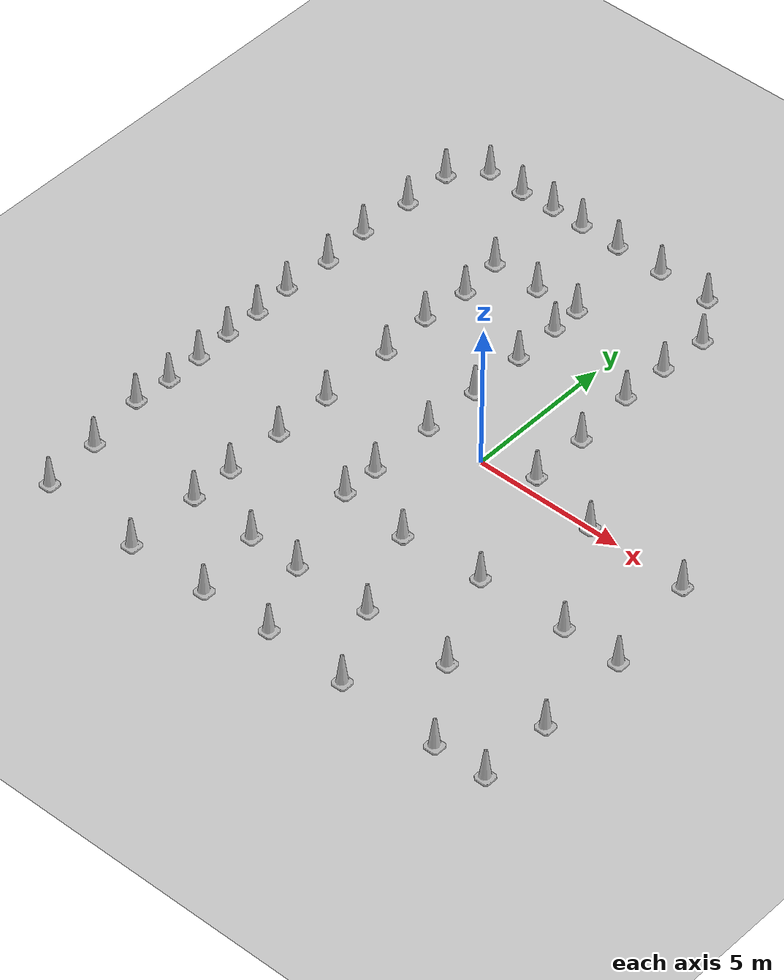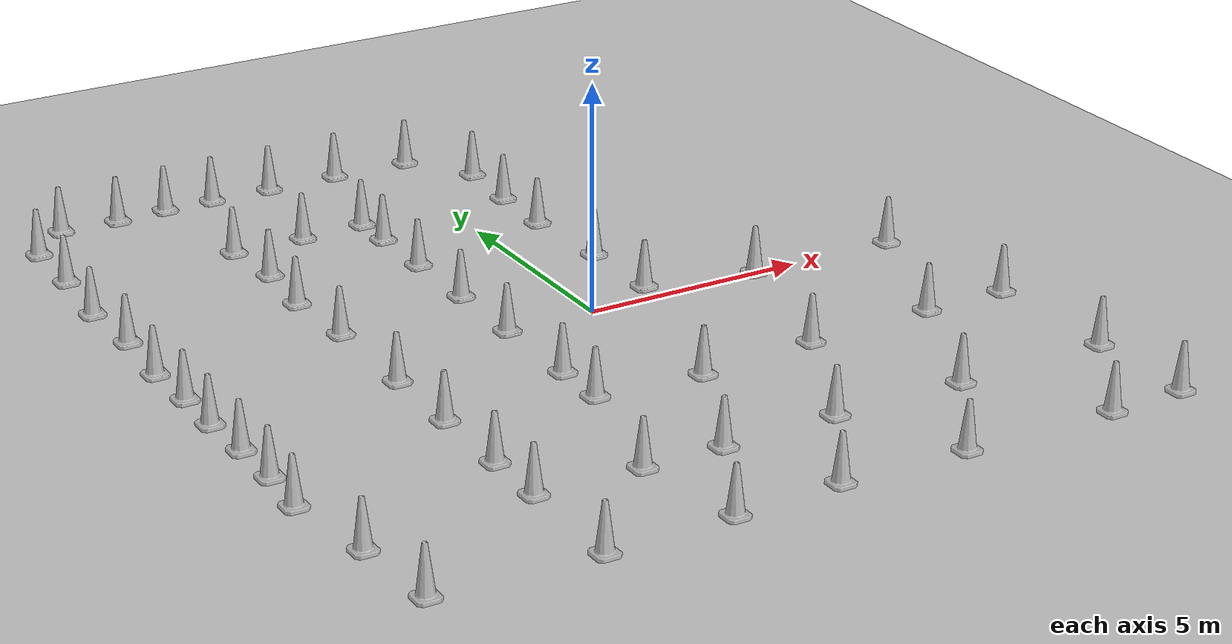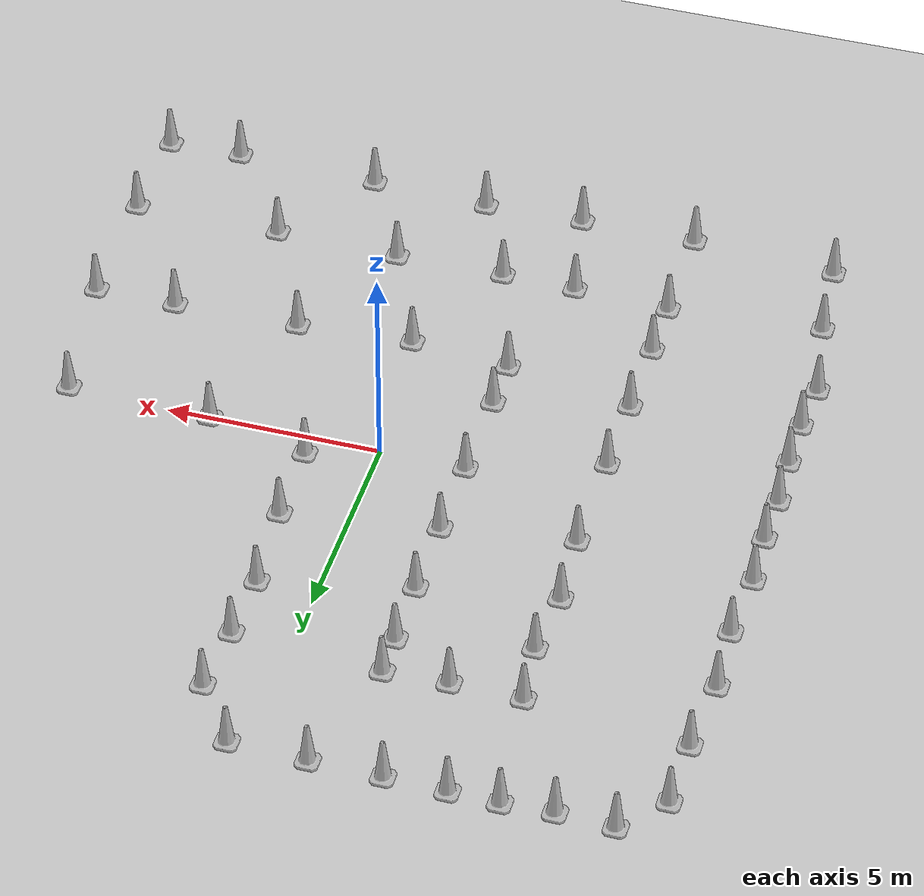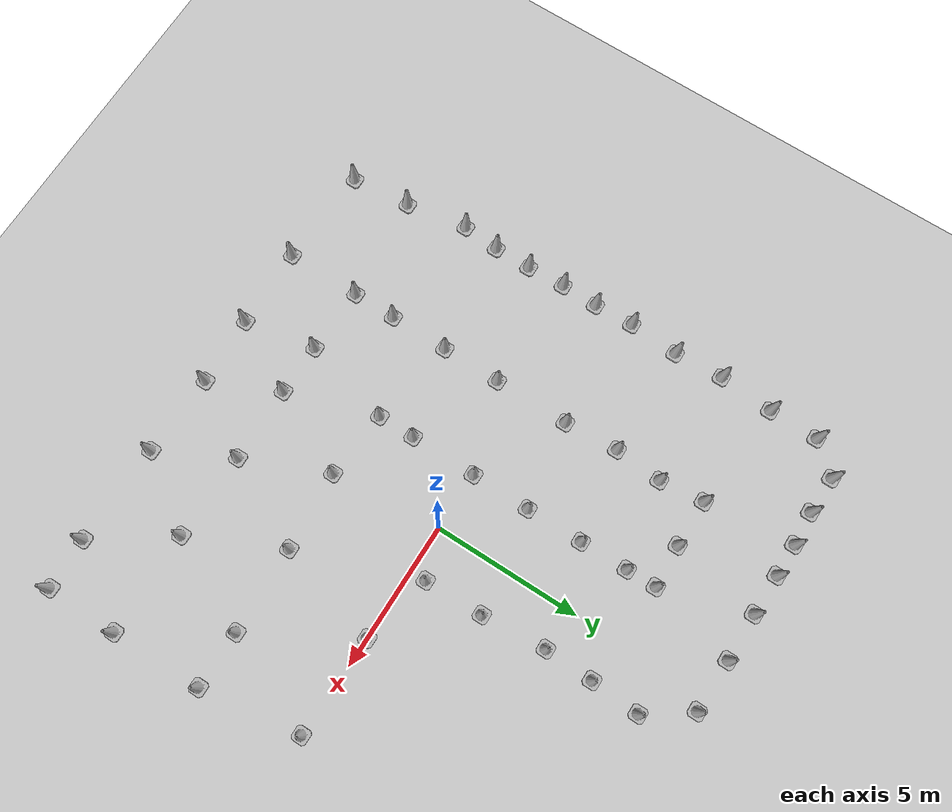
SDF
<sdf version="1.7">
 <world name="default">
  <light name="sun" type="directional">
   <pose>0 0 10 0 -0 0</pose>
   <diffuse>0.8 0.8 0.8 1</diffuse>
   <specular>0.2 0.2 0.2 1</specular>
   <attenuation>
    <range>1000</range>
    <constant>0.9</constant>
    <linear>0.01</linear>
    <quadratic>0.001</quadratic>
   </attenuation>
   <direction>-0.5 0.1 -0.9</direction>
   <spot><inner_angle>0</inner_angle><outer_angle>0</outer_angle><falloff>0</falloff></spot>
  </light>
  <model name="ground_plane">
   <static>1</static>
   <link name="link">
    <collision name="collision">
     <geometry><plane><normal>0 0 1</normal><size>100 100</size></plane></geometry>
     <surface>
      <contact><collide_bitmask>65535</collide_bitmask></contact>
      <friction><ode><mu>100</mu><mu2>50</mu2></ode></friction>
     </surface>
    </collision>
    <visual name="visual">
     <cast_shadows>0</cast_shadows>
     <geometry><plane><normal>0 0 1</normal><size>100 100</size></plane></geometry>
     <material>
      <script><uri>file://media/materials/scripts/gazebo.material</uri><name>Gazebo/Grey</name></script>
     </material>
    </visual>
   </link>
  </model>
  <gravity>0 0 -9.8</gravity>
  <magnetic_field>6e-06 2.3e-05 -4.2e-05</magnetic_field>
  <atmosphere type="adiabatic"/>
  <physics type="ode">
   <max_step_size>0.001</max_step_size>
   <real_time_factor>1</real_time_factor>
   <real_time_update_rate>1000</real_time_update_rate>
  </physics>
  <scene><ambient>0.4 0.4 0.4 1</ambient><background>0.7 0.7 0.7 1</background><shadows>1</shadows></scene>
  <audio><device>default</device></audio>
  <spherical_coordinates>
   <surface_model>EARTH_WGS84</surface_model>
   <latitude_deg>0</latitude_deg>
   <longitude_deg>0</longitude_deg>
   <elevation>0</elevation>
   <heading_deg>0</heading_deg>
  </spherical_coordinates>
  <model name="Construction Cone">
   <link name="link">
    <collision name="collision">
     <geometry>
      <mesh><scale>10 10 10</scale><uri>model://construction_cone/meshes/construction_cone.dae</uri></mesh>
     </geometry>
    </collision>
    <visual name="visual">
     <geometry>
      <mesh><scale>10 10 10</scale><uri>model://construction_cone/meshes/construction_cone.dae</uri></mesh>
     </geometry>
    </visual>
    <inertial>
     <inertia><ixx>1</ixx><ixy>0</ixy><ixz>0</ixz><iyy>1</iyy><iyz>0</iyz><izz>1</izz></inertia>
     <mass>1</mass>
    </inertial>
   </link>
   <pose>-8.58589 -6.78778 -6e-06 2e-06 -0 0</pose>
  </model>
  <model name="Construction Cone_0">
   <link name="link">
    <collision name="collision">
     <geometry>
      <mesh><scale>10 10 10</scale><uri>model://construction_cone/meshes/construction_cone.dae</uri></mesh>
     </geometry>
    </collision>
    <visual name="visual">
     <geometry>
      <mesh><scale>10 10 10</scale><uri>model://construction_cone/meshes/construction_cone.dae</uri></mesh>
     </geometry>
    </visual>
    <inertial>
     <inertia><ixx>1</ixx><ixy>0</ixy><ixz>0</ixz><iyy>1</iyy><iyz>0</iyz><izz>1</izz></inertia>
     <mass>1</mass>
    </inertial>
   </link>
   <pose>-8.39094 -8.78823 -0 0 -0 0</pose>
  </model>
  <model name="Construction Cone_1">
   <link name="link">
    <collision name="collision">
     <geometry>
      <mesh><scale>10 10 10</scale><uri>model://construction_cone/meshes/construction_cone.dae</uri></mesh>
     </geometry>
    </collision>
    <visual name="visual">
     <geometry>
      <mesh><scale>10 10 10</scale><uri>model://construction_cone/meshes/construction_cone.dae</uri></mesh>
     </geometry>
    </visual>
    <inertial>
     <inertia><ixx>1</ixx><ixy>0</ixy><ixz>0</ixz><iyy>1</iyy><iyz>0</iyz><izz>1</izz></inertia>
     <mass>1</mass>
    </inertial>
   </link>
   <pose>1.58108 0.538403 -1e-05 0 -0 0</pose>
  </model>
  <model name="Construction Cone_2">
   <link name="link">
    <collision name="collision">
     <geometry>
      <mesh><scale>10 10 10</scale><uri>model://construction_cone/meshes/construction_cone.dae</uri></mesh>
     </geometry>
    </collision>
    <visual name="visual">
     <geometry>
      <mesh><scale>10 10 10</scale><uri>model://construction_cone/meshes/construction_cone.dae</uri></mesh>
     </geometry>
    </visual>
    <inertial>
     <inertia><ixx>1</ixx><ixy>0</ixy><ixz>0</ixz><iyy>1</iyy><iyz>0</iyz><izz>1</izz></inertia>
     <mass>1</mass>
    </inertial>
   </link>
   <pose>1.53036 2.53831 -0 0 -0 0</pose>
  </model>
  <model name="Construction Cone_3">
   <link name="link">
    <collision name="collision">
     <geometry>
      <mesh><scale>10 10 10</scale><uri>model://construction_cone/meshes/construction_cone.dae</uri></mesh>
     </geometry>
    </collision>
    <visual name="visual">
     <geometry>
      <mesh><scale>10 10 10</scale><uri>model://construction_cone/meshes/construction_cone.dae</uri></mesh>
     </geometry>
    </visual>
    <inertial>
     <inertia><ixx>1</ixx><ixy>0</ixy><ixz>0</ixz><iyy>1</iyy><iyz>0</iyz><izz>1</izz></inertia>
     <mass>1</mass>
    </inertial>
   </link>
   <pose>1.34439 4.70949 -0 0 -0 0</pose>
  </model>
  <model name="Construction Cone_0_clone">
   <link name="link">
    <collision name="collision">
     <geometry>
      <mesh><scale>10 10 10</scale><uri>model://construction_cone/meshes/construction_cone.dae</uri></mesh>
     </geometry>
    </collision>
    <visual name="visual">
     <geometry>
      <mesh><scale>10 10 10</scale><uri>model://construction_cone/meshes/construction_cone.dae</uri></mesh>
     </geometry>
    </visual>
    <inertial>
     <inertia><ixx>1</ixx><ixy>0</ixy><ixz>0</ixz><iyy>1</iyy><iyz>0</iyz><izz>1</izz></inertia>
     <mass>1</mass>
    </inertial>
   </link>
   <pose>1.3829 6.35194 -1e-05 -0 -0 -0</pose>
  </model>
  <model name="Construction Cone_0_clone_0">
   <link name="link">
    <collision name="collision">
     <geometry>
      <mesh><scale>10 10 10</scale><uri>model://construction_cone/meshes/construction_cone.dae</uri></mesh>
     </geometry>
    </collision>
    <visual name="visual">
     <geometry>
      <mesh><scale>10 10 10</scale><uri>model://construction_cone/meshes/construction_cone.dae</uri></mesh>
     </geometry>
    </visual>
    <inertial>
     <inertia><ixx>1</ixx><ixy>0</ixy><ixz>0</ixz><iyy>1</iyy><iyz>0</iyz><izz>1</izz></inertia>
     <mass>1</mass>
    </inertial>
   </link>
   <pose>1.47291 8 -0 0 -0 0</pose>
  </model>
  <model name="Construction Cone_0_clone_1">
   <link name="link">
    <collision name="collision">
     <geometry>
      <mesh><scale>10 10 10</scale><uri>model://construction_cone/meshes/construction_cone.dae</uri></mesh>
     </geometry>
    </collision>
    <visual name="visual">
     <geometry>
      <mesh><scale>10 10 10</scale><uri>model://construction_cone/meshes/construction_cone.dae</uri></mesh>
     </geometry>
    </visual>
    <inertial>
     <inertia><ixx>1</ixx><ixy>0</ixy><ixz>0</ixz><iyy>1</iyy><iyz>0</iyz><izz>1</izz></inertia>
     <mass>1</mass>
    </inertial>
   </link>
   <pose>0.457732 9.44511 -0 0 -0 0</pose>
  </model>
  <model name="Construction Cone_0_clone_2">
   <link name="link">
    <collision name="collision">
     <geometry>
      <mesh><scale>10 10 10</scale><uri>model://construction_cone/meshes/construction_cone.dae</uri></mesh>
     </geometry>
    </collision>
    <visual name="visual">
     <geometry>
      <mesh><scale>10 10 10</scale><uri>model://construction_cone/meshes/construction_cone.dae</uri></mesh>
     </geometry>
    </visual>
    <inertial>
     <inertia><ixx>1</ixx><ixy>0</ixy><ixz>0</ixz><iyy>1</iyy><iyz>0</iyz><izz>1</izz></inertia>
     <mass>1</mass>
    </inertial>
   </link>
   <pose>-1.33343 9.49144 -5e-06 -4e-06 1e-06 0</pose>
  </model>
  <model name="Construction Cone_0_clone_3">
   <link name="link">
    <collision name="collision">
     <geometry>
      <mesh><scale>10 10 10</scale><uri>model://construction_cone/meshes/construction_cone.dae</uri></mesh>
     </geometry>
    </collision>
    <visual name="visual">
     <geometry>
      <mesh><scale>10 10 10</scale><uri>model://construction_cone/meshes/construction_cone.dae</uri></mesh>
     </geometry>
    </visual>
    <inertial>
     <inertia><ixx>1</ixx><ixy>0</ixy><ixz>0</ixz><iyy>1</iyy><iyz>0</iyz><izz>1</izz></inertia>
     <mass>1</mass>
    </inertial>
   </link>
   <pose>-2.97493 9.4937 -1e-05 -0 -0 -0</pose>
  </model>
  <model name="Construction Cone_0_clone_4">
   <link name="link">
    <collision name="collision">
     <geometry>
      <mesh><scale>10 10 10</scale><uri>model://construction_cone/meshes/construction_cone.dae</uri></mesh>
     </geometry>
    </collision>
    <visual name="visual">
     <geometry>
      <mesh><scale>10 10 10</scale><uri>model://construction_cone/meshes/construction_cone.dae</uri></mesh>
     </geometry>
    </visual>
    <inertial>
     <inertia><ixx>1</ixx><ixy>0</ixy><ixz>0</ixz><iyy>1</iyy><iyz>0</iyz><izz>1</izz></inertia>
     <mass>1</mass>
    </inertial>
   </link>
   <pose>-4.37572 9.51538 -0 0 -0 0</pose>
  </model>
  <model name="Construction Cone_0_clone_5">
   <link name="link">
    <collision name="collision">
     <geometry>
      <mesh><scale>10 10 10</scale><uri>model://construction_cone/meshes/construction_cone.dae</uri></mesh>
     </geometry>
    </collision>
    <visual name="visual">
     <geometry>
      <mesh><scale>10 10 10</scale><uri>model://construction_cone/meshes/construction_cone.dae</uri></mesh>
     </geometry>
    </visual>
    <inertial>
     <inertia><ixx>1</ixx><ixy>0</ixy><ixz>0</ixz><iyy>1</iyy><iyz>0</iyz><izz>1</izz></inertia>
     <mass>1</mass>
    </inertial>
   </link>
   <pose>-5.50758 9.52013 -0 0 -0 0</pose>
  </model>
  <model name="Construction Cone_0_clone_6">
   <link name="link">
    <collision name="collision">
     <geometry>
      <mesh><scale>10 10 10</scale><uri>model://construction_cone/meshes/construction_cone.dae</uri></mesh>
     </geometry>
    </collision>
    <visual name="visual">
     <geometry>
      <mesh><scale>10 10 10</scale><uri>model://construction_cone/meshes/construction_cone.dae</uri></mesh>
     </geometry>
    </visual>
    <inertial>
     <inertia><ixx>1</ixx><ixy>0</ixy><ixz>0</ixz><iyy>1</iyy><iyz>0</iyz><izz>1</izz></inertia>
     <mass>1</mass>
    </inertial>
   </link>
   <pose>-6.6683 9.4597 -4e-06 4e-06 -1e-06 0</pose>
  </model>
  <model name="Construction Cone_0_clone_7">
   <link name="link">
    <collision name="collision">
     <geometry>
      <mesh><scale>10 10 10</scale><uri>model://construction_cone/meshes/construction_cone.dae</uri></mesh>
     </geometry>
    </collision>
    <visual name="visual">
     <geometry>
      <mesh><scale>10 10 10</scale><uri>model://construction_cone/meshes/construction_cone.dae</uri></mesh>
     </geometry>
    </visual>
    <inertial>
     <inertia><ixx>1</ixx><ixy>0</ixy><ixz>0</ixz><iyy>1</iyy><iyz>0</iyz><izz>1</izz></inertia>
     <mass>1</mass>
    </inertial>
   </link>
   <pose>-7.9764 9.50957 -0 0 -0 0</pose>
  </model>
  <model name="Construction Cone_0_clone_8">
   <link name="link">
    <collision name="collision">
     <geometry>
      <mesh><scale>10 10 10</scale><uri>model://construction_cone/meshes/construction_cone.dae</uri></mesh>
     </geometry>
    </collision>
    <visual name="visual">
     <geometry>
      <mesh><scale>10 10 10</scale><uri>model://construction_cone/meshes/construction_cone.dae</uri></mesh>
     </geometry>
    </visual>
    <inertial>
     <inertia><ixx>1</ixx><ixy>0</ixy><ixz>0</ixz><iyy>1</iyy><iyz>0</iyz><izz>1</izz></inertia>
     <mass>1</mass>
    </inertial>
   </link>
   <pose>-8.85784 8.51296 -0 0 -0 0</pose>
  </model>
  <model name="Construction Cone_0_clone_9">
   <link name="link">
    <collision name="collision">
     <geometry>
      <mesh><scale>10 10 10</scale><uri>model://construction_cone/meshes/construction_cone.dae</uri></mesh>
     </geometry>
    </collision>
    <visual name="visual">
     <geometry>
      <mesh><scale>10 10 10</scale><uri>model://construction_cone/meshes/construction_cone.dae</uri></mesh>
     </geometry>
    </visual>
    <inertial>
     <inertia><ixx>1</ixx><ixy>0</ixy><ixz>0</ixz><iyy>1</iyy><iyz>0</iyz><izz>1</izz></inertia>
     <mass>1</mass>
    </inertial>
   </link>
   <pose>-8.87069 6.83471 -0 0 -1e-06 0</pose>
  </model>
  <model name="Construction Cone_0_clone_10">
   <link name="link">
    <collision name="collision">
     <geometry>
      <mesh><scale>10 10 10</scale><uri>model://construction_cone/meshes/construction_cone.dae</uri></mesh>
     </geometry>
    </collision>
    <visual name="visual">
     <geometry>
      <mesh><scale>10 10 10</scale><uri>model://construction_cone/meshes/construction_cone.dae</uri></mesh>
     </geometry>
    </visual>
    <inertial>
     <inertia><ixx>1</ixx><ixy>0</ixy><ixz>0</ixz><iyy>1</iyy><iyz>0</iyz><izz>1</izz></inertia>
     <mass>1</mass>
    </inertial>
   </link>
   <pose>-9 5 -0 -0 -0 -0</pose>
  </model>
  <model name="Construction Cone_0_clone_11">
   <link name="link">
    <collision name="collision">
     <geometry>
      <mesh><scale>10 10 10</scale><uri>model://construction_cone/meshes/construction_cone.dae</uri></mesh>
     </geometry>
    </collision>
    <visual name="visual">
     <geometry>
      <mesh><scale>10 10 10</scale><uri>model://construction_cone/meshes/construction_cone.dae</uri></mesh>
     </geometry>
    </visual>
    <inertial>
     <inertia><ixx>1</ixx><ixy>0</ixy><ixz>0</ixz><iyy>1</iyy><iyz>0</iyz><izz>1</izz></inertia>
     <mass>1</mass>
    </inertial>
   </link>
   <pose>-8.89383 3.34438 -8e-06 1e-06 -0 0</pose>
  </model>
  <model name="Construction Cone_0_clone_12">
   <link name="link">
    <collision name="collision">
     <geometry>
      <mesh><scale>10 10 10</scale><uri>model://construction_cone/meshes/construction_cone.dae</uri></mesh>
     </geometry>
    </collision>
    <visual name="visual">
     <geometry>
      <mesh><scale>10 10 10</scale><uri>model://construction_cone/meshes/construction_cone.dae</uri></mesh>
     </geometry>
    </visual>
    <inertial>
     <inertia><ixx>1</ixx><ixy>0</ixy><ixz>0</ixz><iyy>1</iyy><iyz>0</iyz><izz>1</izz></inertia>
     <mass>1</mass>
    </inertial>
   </link>
   <pose>-8.98898 1.6641 -1e-05 -0 -0 -0</pose>
  </model>
  <model name="Construction Cone_0_clone_13">
   <link name="link">
    <collision name="collision">
     <geometry>
      <mesh><scale>10 10 10</scale><uri>model://construction_cone/meshes/construction_cone.dae</uri></mesh>
     </geometry>
    </collision>
    <visual name="visual">
     <geometry>
      <mesh><scale>10 10 10</scale><uri>model://construction_cone/meshes/construction_cone.dae</uri></mesh>
     </geometry>
    </visual>
    <inertial>
     <inertia><ixx>1</ixx><ixy>0</ixy><ixz>0</ixz><iyy>1</iyy><iyz>0</iyz><izz>1</izz></inertia>
     <mass>1</mass>
    </inertial>
   </link>
   <pose>-8.9188 0.333059 -1e-05 -1e-06 0 0</pose>
  </model>
  <model name="Construction Cone_0_clone_14">
   <link name="link">
    <collision name="collision">
     <geometry>
      <mesh><scale>10 10 10</scale><uri>model://construction_cone/meshes/construction_cone.dae</uri></mesh>
     </geometry>
    </collision>
    <visual name="visual">
     <geometry>
      <mesh><scale>10 10 10</scale><uri>model://construction_cone/meshes/construction_cone.dae</uri></mesh>
     </geometry>
    </visual>
    <inertial>
     <inertia><ixx>1</ixx><ixy>0</ixy><ixz>0</ixz><iyy>1</iyy><iyz>0</iyz><izz>1</izz></inertia>
     <mass>1</mass>
    </inertial>
   </link>
   <pose>-8.93304 -0.911355 -0 0 -1e-06 0</pose>
  </model>
  <model name="Construction Cone_0_clone_15">
   <link name="link">
    <collision name="collision">
     <geometry>
      <mesh><scale>10 10 10</scale><uri>model://construction_cone/meshes/construction_cone.dae</uri></mesh>
     </geometry>
    </collision>
    <visual name="visual">
     <geometry>
      <mesh><scale>10 10 10</scale><uri>model://construction_cone/meshes/construction_cone.dae</uri></mesh>
     </geometry>
    </visual>
    <inertial>
     <inertia><ixx>1</ixx><ixy>0</ixy><ixz>0</ixz><iyy>1</iyy><iyz>0</iyz><izz>1</izz></inertia>
     <mass>1</mass>
    </inertial>
   </link>
   <pose>-8.865 -2.19582 -0 0 -0 0</pose>
  </model>
  <model name="Construction Cone_0_clone_16">
   <link name="link">
    <collision name="collision">
     <geometry>
      <mesh><scale>10 10 10</scale><uri>model://construction_cone/meshes/construction_cone.dae</uri></mesh>
     </geometry>
    </collision>
    <visual name="visual">
     <geometry>
      <mesh><scale>10 10 10</scale><uri>model://construction_cone/meshes/construction_cone.dae</uri></mesh>
     </geometry>
    </visual>
    <inertial>
     <inertia><ixx>1</ixx><ixy>0</ixy><ixz>0</ixz><iyy>1</iyy><iyz>0</iyz><izz>1</izz></inertia>
     <mass>1</mass>
    </inertial>
   </link>
   <pose>-8.85179 -3.45389 -0 2e-06 -2e-06 -0</pose>
  </model>
  <model name="Construction Cone_0_clone_17">
   <link name="link">
    <collision name="collision">
     <geometry>
      <mesh><scale>10 10 10</scale><uri>model://construction_cone/meshes/construction_cone.dae</uri></mesh>
     </geometry>
    </collision>
    <visual name="visual">
     <geometry>
      <mesh><scale>10 10 10</scale><uri>model://construction_cone/meshes/construction_cone.dae</uri></mesh>
     </geometry>
    </visual>
    <inertial>
     <inertia><ixx>1</ixx><ixy>0</ixy><ixz>0</ixz><iyy>1</iyy><iyz>0</iyz><izz>1</izz></inertia>
     <mass>1</mass>
    </inertial>
   </link>
   <pose>-8.94632 -4.71068 -1e-05 0 -0 0</pose>
  </model>
  <model name="Construction Cone_0_clone_18">
   <link name="link">
    <collision name="collision">
     <geometry>
      <mesh><scale>10 10 10</scale><uri>model://construction_cone/meshes/construction_cone.dae</uri></mesh>
     </geometry>
    </collision>
    <visual name="visual">
     <geometry>
      <mesh><scale>10 10 10</scale><uri>model://construction_cone/meshes/construction_cone.dae</uri></mesh>
     </geometry>
    </visual>
    <inertial>
     <inertia><ixx>1</ixx><ixy>0</ixy><ixz>0</ixz><iyy>1</iyy><iyz>0</iyz><izz>1</izz></inertia>
     <mass>1</mass>
    </inertial>
   </link>
   <pose>-2 0 -0 0 -0 0</pose>
  </model>
  <model name="Construction Cone_0_clone_19">
   <link name="link">
    <collision name="collision">
     <geometry>
      <mesh><scale>10 10 10</scale><uri>model://construction_cone/meshes/construction_cone.dae</uri></mesh>
     </geometry>
    </collision>
    <visual name="visual">
     <geometry>
      <mesh><scale>10 10 10</scale><uri>model://construction_cone/meshes/construction_cone.dae</uri></mesh>
     </geometry>
    </visual>
    <inertial>
     <inertia><ixx>1</ixx><ixy>0</ixy><ixz>0</ixz><iyy>1</iyy><iyz>0</iyz><izz>1</izz></inertia>
     <mass>1</mass>
    </inertial>
   </link>
   <pose>-2 2 -1e-05 -1e-06 0 0</pose>
  </model>
  <model name="Construction Cone_0_clone_20">
   <link name="link">
    <collision name="collision">
     <geometry>
      <mesh><scale>10 10 10</scale><uri>model://construction_cone/meshes/construction_cone.dae</uri></mesh>
     </geometry>
    </collision>
    <visual name="visual">
     <geometry>
      <mesh><scale>10 10 10</scale><uri>model://construction_cone/meshes/construction_cone.dae</uri></mesh>
     </geometry>
    </visual>
    <inertial>
     <inertia><ixx>1</ixx><ixy>0</ixy><ixz>0</ixz><iyy>1</iyy><iyz>0</iyz><izz>1</izz></inertia>
     <mass>1</mass>
    </inertial>
   </link>
   <pose>-2.0151 3.92446 -0 0 -1e-06 0</pose>
  </model>
  <model name="Construction Cone_0_clone_21">
   <link name="link">
    <collision name="collision">
     <geometry>
      <mesh><scale>10 10 10</scale><uri>model://construction_cone/meshes/construction_cone.dae</uri></mesh>
     </geometry>
    </collision>
    <visual name="visual">
     <geometry>
      <mesh><scale>10 10 10</scale><uri>model://construction_cone/meshes/construction_cone.dae</uri></mesh>
     </geometry>
    </visual>
    <inertial>
     <inertia><ixx>1</ixx><ixy>0</ixy><ixz>0</ixz><iyy>1</iyy><iyz>0</iyz><izz>1</izz></inertia>
     <mass>1</mass>
    </inertial>
   </link>
   <pose>-2.04298 5.55068 0 -0 -0 -0</pose>
  </model>
  <model name="Construction Cone_0_clone_22">
   <link name="link">
    <collision name="collision">
     <geometry>
      <mesh><scale>10 10 10</scale><uri>model://construction_cone/meshes/construction_cone.dae</uri></mesh>
     </geometry>
    </collision>
    <visual name="visual">
     <geometry>
      <mesh><scale>10 10 10</scale><uri>model://construction_cone/meshes/construction_cone.dae</uri></mesh>
     </geometry>
    </visual>
    <inertial>
     <inertia><ixx>1</ixx><ixy>0</ixy><ixz>0</ixz><iyy>1</iyy><iyz>0</iyz><izz>1</izz></inertia>
     <mass>1</mass>
    </inertial>
   </link>
   <pose>-2.06474 6.56807 -0 0 -0 0</pose>
  </model>
  <model name="Construction Cone_0_clone_23">
   <link name="link">
    <collision name="collision">
     <geometry>
      <mesh><scale>10 10 10</scale><uri>model://construction_cone/meshes/construction_cone.dae</uri></mesh>
     </geometry>
    </collision>
    <visual name="visual">
     <geometry>
      <mesh><scale>10 10 10</scale><uri>model://construction_cone/meshes/construction_cone.dae</uri></mesh>
     </geometry>
    </visual>
    <inertial>
     <inertia><ixx>1</ixx><ixy>0</ixy><ixz>0</ixz><iyy>1</iyy><iyz>0</iyz><izz>1</izz></inertia>
     <mass>1</mass>
    </inertial>
   </link>
   <pose>-3.52967 6.50012 -0 0 -1e-06 0</pose>
  </model>
  <model name="Construction Cone_0_clone_24">
   <link name="link">
    <collision name="collision">
     <geometry>
      <mesh><scale>10 10 10</scale><uri>model://construction_cone/meshes/construction_cone.dae</uri></mesh>
     </geometry>
    </collision>
    <visual name="visual">
     <geometry>
      <mesh><scale>10 10 10</scale><uri>model://construction_cone/meshes/construction_cone.dae</uri></mesh>
     </geometry>
    </visual>
    <inertial>
     <inertia><ixx>1</ixx><ixy>0</ixy><ixz>0</ixz><iyy>1</iyy><iyz>0</iyz><izz>1</izz></inertia>
     <mass>1</mass>
    </inertial>
   </link>
   <pose>-5.16534 6.50658 -0 0 -1e-06 0</pose>
  </model>
  <model name="Construction Cone_0_clone_25">
   <link name="link">
    <collision name="collision">
     <geometry>
      <mesh><scale>10 10 10</scale><uri>model://construction_cone/meshes/construction_cone.dae</uri></mesh>
     </geometry>
    </collision>
    <visual name="visual">
     <geometry>
      <mesh><scale>10 10 10</scale><uri>model://construction_cone/meshes/construction_cone.dae</uri></mesh>
     </geometry>
    </visual>
    <inertial>
     <inertia><ixx>1</ixx><ixy>0</ixy><ixz>0</ixz><iyy>1</iyy><iyz>0</iyz><izz>1</izz></inertia>
     <mass>1</mass>
    </inertial>
   </link>
   <pose>-5 5 -1e-05 0 -0 0</pose>
  </model>
  <model name="Construction Cone_0_clone_26">
   <link name="link">
    <collision name="collision">
     <geometry>
      <mesh><scale>10 10 10</scale><uri>model://construction_cone/meshes/construction_cone.dae</uri></mesh>
     </geometry>
    </collision>
    <visual name="visual">
     <geometry>
      <mesh><scale>10 10 10</scale><uri>model://construction_cone/meshes/construction_cone.dae</uri></mesh>
     </geometry>
    </visual>
    <inertial>
     <inertia><ixx>1</ixx><ixy>0</ixy><ixz>0</ixz><iyy>1</iyy><iyz>0</iyz><izz>1</izz></inertia>
     <mass>1</mass>
    </inertial>
   </link>
   <pose>-5.12641 3.38239 -1e-05 0 -0 0</pose>
  </model>
  <model name="Construction Cone_0_clone_27">
   <link name="link">
    <collision name="collision">
     <geometry>
      <mesh><scale>10 10 10</scale><uri>model://construction_cone/meshes/construction_cone.dae</uri></mesh>
     </geometry>
    </collision>
    <visual name="visual">
     <geometry>
      <mesh><scale>10 10 10</scale><uri>model://construction_cone/meshes/construction_cone.dae</uri></mesh>
     </geometry>
    </visual>
    <inertial>
     <inertia><ixx>1</ixx><ixy>0</ixy><ixz>0</ixz><iyy>1</iyy><iyz>0</iyz><izz>1</izz></inertia>
     <mass>1</mass>
    </inertial>
   </link>
   <pose>-5 1.55353 -0 0 -0 0</pose>
  </model>
  <model name="Construction Cone_0_clone_28">
   <link name="link">
    <collision name="collision">
     <geometry>
      <mesh><scale>10 10 10</scale><uri>model://construction_cone/meshes/construction_cone.dae</uri></mesh>
     </geometry>
    </collision>
    <visual name="visual">
     <geometry>
      <mesh><scale>10 10 10</scale><uri>model://construction_cone/meshes/construction_cone.dae</uri></mesh>
     </geometry>
    </visual>
    <inertial>
     <inertia><ixx>1</ixx><ixy>0</ixy><ixz>0</ixz><iyy>1</iyy><iyz>0</iyz><izz>1</izz></inertia>
     <mass>1</mass>
    </inertial>
   </link>
   <pose>-5 -1 -0 0 -1e-06 0</pose>
  </model>
  <model name="Construction Cone_0_clone_29">
   <link name="link">
    <collision name="collision">
     <geometry>
      <mesh><scale>10 10 10</scale><uri>model://construction_cone/meshes/construction_cone.dae</uri></mesh>
     </geometry>
    </collision>
    <visual name="visual">
     <geometry>
      <mesh><scale>10 10 10</scale><uri>model://construction_cone/meshes/construction_cone.dae</uri></mesh>
     </geometry>
    </visual>
    <inertial>
     <inertia><ixx>1</ixx><ixy>0</ixy><ixz>0</ixz><iyy>1</iyy><iyz>0</iyz><izz>1</izz></inertia>
     <mass>1</mass>
    </inertial>
   </link>
   <pose>-5 -3 -4e-06 4e-06 -1e-06 0</pose>
  </model>
  <model name="Construction Cone_0_clone_30">
   <link name="link">
    <collision name="collision">
     <geometry>
      <mesh><scale>10 10 10</scale><uri>model://construction_cone/meshes/construction_cone.dae</uri></mesh>
     </geometry>
    </collision>
    <visual name="visual">
     <geometry>
      <mesh><scale>10 10 10</scale><uri>model://construction_cone/meshes/construction_cone.dae</uri></mesh>
     </geometry>
    </visual>
    <inertial>
     <inertia><ixx>1</ixx><ixy>0</ixy><ixz>0</ixz><iyy>1</iyy><iyz>0</iyz><izz>1</izz></inertia>
     <mass>1</mass>
    </inertial>
   </link>
   <pose>-5 -5 -9e-06 -1e-06 -0 -0</pose>
  </model>
  <model name="Construction Cone_0_clone_31">
   <link name="link">
    <collision name="collision">
     <geometry>
      <mesh><scale>10 10 10</scale><uri>model://construction_cone/meshes/construction_cone.dae</uri></mesh>
     </geometry>
    </collision>
    <visual name="visual">
     <geometry>
      <mesh><scale>10 10 10</scale><uri>model://construction_cone/meshes/construction_cone.dae</uri></mesh>
     </geometry>
    </visual>
    <inertial>
     <inertia><ixx>1</ixx><ixy>0</ixy><ixz>0</ixz><iyy>1</iyy><iyz>0</iyz><izz>1</izz></inertia>
     <mass>1</mass>
    </inertial>
   </link>
   <pose>-5 -6.47337 -6e-06 -4e-06 1e-06 0</pose>
  </model>
  <model name="Construction Cone_0_clone_32">
   <link name="link">
    <collision name="collision">
     <geometry>
      <mesh><scale>10 10 10</scale><uri>model://construction_cone/meshes/construction_cone.dae</uri></mesh>
     </geometry>
    </collision>
    <visual name="visual">
     <geometry>
      <mesh><scale>10 10 10</scale><uri>model://construction_cone/meshes/construction_cone.dae</uri></mesh>
     </geometry>
    </visual>
    <inertial>
     <inertia><ixx>1</ixx><ixy>0</ixy><ixz>0</ixz><iyy>1</iyy><iyz>0</iyz><izz>1</izz></inertia>
     <mass>1</mass>
    </inertial>
   </link>
   <pose>-2.7462 -6.55253 -0 0 -0 0</pose>
  </model>
  <model name="Construction Cone_0_clone_33">
   <link name="link">
    <collision name="collision">
     <geometry>
      <mesh><scale>10 10 10</scale><uri>model://construction_cone/meshes/construction_cone.dae</uri></mesh>
     </geometry>
    </collision>
    <visual name="visual">
     <geometry>
      <mesh><scale>10 10 10</scale><uri>model://construction_cone/meshes/construction_cone.dae</uri></mesh>
     </geometry>
    </visual>
    <inertial>
     <inertia><ixx>1</ixx><ixy>0</ixy><ixz>0</ixz><iyy>1</iyy><iyz>0</iyz><izz>1</izz></inertia>
     <mass>1</mass>
    </inertial>
   </link>
   <pose>-1 -6.57463 -0 0 -0 0</pose>
  </model>
  <model name="Construction Cone_0_clone_34">
   <link name="link">
    <collision name="collision">
     <geometry>
      <mesh><scale>10 10 10</scale><uri>model://construction_cone/meshes/construction_cone.dae</uri></mesh>
     </geometry>
    </collision>
    <visual name="visual">
     <geometry>
      <mesh><scale>10 10 10</scale><uri>model://construction_cone/meshes/construction_cone.dae</uri></mesh>
     </geometry>
    </visual>
    <inertial>
     <inertia><ixx>1</ixx><ixy>0</ixy><ixz>0</ixz><iyy>1</iyy><iyz>0</iyz><izz>1</izz></inertia>
     <mass>1</mass>
    </inertial>
   </link>
   <pose>1.56437 -6.52913 -1e-06 1e-06 -2e-06 -0</pose>
  </model>
  <model name="Construction Cone_0_clone_35">
   <link name="link">
    <collision name="collision">
     <geometry>
      <mesh><scale>10 10 10</scale><uri>model://construction_cone/meshes/construction_cone.dae</uri></mesh>
     </geometry>
    </collision>
    <visual name="visual">
     <geometry>
      <mesh><scale>10 10 10</scale><uri>model://construction_cone/meshes/construction_cone.dae</uri></mesh>
     </geometry>
    </visual>
    <inertial>
     <inertia><ixx>1</ixx><ixy>0</ixy><ixz>0</ixz><iyy>1</iyy><iyz>0</iyz><izz>1</izz></inertia>
     <mass>1</mass>
    </inertial>
   </link>
   <pose>4.51437 -6.57996 -0 0 -0 0</pose>
  </model>
  <model name="Construction Cone_0_clone_36">
   <link name="link">
    <collision name="collision">
     <geometry>
      <mesh><scale>10 10 10</scale><uri>model://construction_cone/meshes/construction_cone.dae</uri></mesh>
     </geometry>
    </collision>
    <visual name="visual">
     <geometry>
      <mesh><scale>10 10 10</scale><uri>model://construction_cone/meshes/construction_cone.dae</uri></mesh>
     </geometry>
    </visual>
    <inertial>
     <inertia><ixx>1</ixx><ixy>0</ixy><ixz>0</ixz><iyy>1</iyy><iyz>0</iyz><izz>1</izz></inertia>
     <mass>1</mass>
    </inertial>
   </link>
   <pose>8 -6.55185 -1e-05 -0 -0 -0</pose>
  </model>
  <model name="Construction Cone_0_clone_37">
   <link name="link">
    <collision name="collision">
     <geometry>
      <mesh><scale>10 10 10</scale><uri>model://construction_cone/meshes/construction_cone.dae</uri></mesh>
     </geometry>
    </collision>
    <visual name="visual">
     <geometry>
      <mesh><scale>10 10 10</scale><uri>model://construction_cone/meshes/construction_cone.dae</uri></mesh>
     </geometry>
    </visual>
    <inertial>
     <inertia><ixx>1</ixx><ixy>0</ixy><ixz>0</ixz><iyy>1</iyy><iyz>0</iyz><izz>1</izz></inertia>
     <mass>1</mass>
    </inertial>
   </link>
   <pose>-5 -9 -1e-05 -0 -0 -0</pose>
  </model>
  <model name="Construction Cone_0_clone_38">
   <link name="link">
    <collision name="collision">
     <geometry>
      <mesh><scale>10 10 10</scale><uri>model://construction_cone/meshes/construction_cone.dae</uri></mesh>
     </geometry>
    </collision>
    <visual name="visual">
     <geometry>
      <mesh><scale>10 10 10</scale><uri>model://construction_cone/meshes/construction_cone.dae</uri></mesh>
     </geometry>
    </visual>
    <inertial>
     <inertia><ixx>1</ixx><ixy>0</ixy><ixz>0</ixz><iyy>1</iyy><iyz>0</iyz><izz>1</izz></inertia>
     <mass>1</mass>
    </inertial>
   </link>
   <pose>-2.2773 -8.96282 -0 0 -1e-06 0</pose>
  </model>
  <model name="Construction Cone_0_clone_39">
   <link name="link">
    <collision name="collision">
     <geometry>
      <mesh><scale>10 10 10</scale><uri>model://construction_cone/meshes/construction_cone.dae</uri></mesh>
     </geometry>
    </collision>
    <visual name="visual">
     <geometry>
      <mesh><scale>10 10 10</scale><uri>model://construction_cone/meshes/construction_cone.dae</uri></mesh>
     </geometry>
    </visual>
    <inertial>
     <inertia><ixx>1</ixx><ixy>0</ixy><ixz>0</ixz><iyy>1</iyy><iyz>0</iyz><izz>1</izz></inertia>
     <mass>1</mass>
    </inertial>
   </link>
   <pose>0.066659 -8.87806 -6e-06 -4e-06 1e-06 0</pose>
  </model>
  <model name="Construction Cone_0_clone_40">
   <link name="link">
    <collision name="collision">
     <geometry>
      <mesh><scale>10 10 10</scale><uri>model://construction_cone/meshes/construction_cone.dae</uri></mesh>
     </geometry>
    </collision>
    <visual name="visual">
     <geometry>
      <mesh><scale>10 10 10</scale><uri>model://construction_cone/meshes/construction_cone.dae</uri></mesh>
     </geometry>
    </visual>
    <inertial>
     <inertia><ixx>1</ixx><ixy>0</ixy><ixz>0</ixz><iyy>1</iyy><iyz>0</iyz><izz>1</izz></inertia>
     <mass>1</mass>
    </inertial>
   </link>
   <pose>2.85358 -8.97524 -0 0 -1e-06 0</pose>
  </model>
  <model name="Construction Cone_0_clone_41">
   <link name="link">
    <collision name="collision">
     <geometry>
      <mesh><scale>10 10 10</scale><uri>model://construction_cone/meshes/construction_cone.dae</uri></mesh>
     </geometry>
    </collision>
    <visual name="visual">
     <geometry>
      <mesh><scale>10 10 10</scale><uri>model://construction_cone/meshes/construction_cone.dae</uri></mesh>
     </geometry>
    </visual>
    <inertial>
     <inertia><ixx>1</ixx><ixy>0</ixy><ixz>0</ixz><iyy>1</iyy><iyz>0</iyz><izz>1</izz></inertia>
     <mass>1</mass>
    </inertial>
   </link>
   <pose>6.25307 -9.05877 -1e-05 -1e-06 0 0</pose>
  </model>
  <model name="Construction Cone_0_clone_42">
   <link name="link">
    <collision name="collision">
     <geometry>
      <mesh><scale>10 10 10</scale><uri>model://construction_cone/meshes/construction_cone.dae</uri></mesh>
     </geometry>
    </collision>
    <visual name="visual">
     <geometry>
      <mesh><scale>10 10 10</scale><uri>model://construction_cone/meshes/construction_cone.dae</uri></mesh>
     </geometry>
    </visual>
    <inertial>
     <inertia><ixx>1</ixx><ixy>0</ixy><ixz>0</ixz><iyy>1</iyy><iyz>0</iyz><izz>1</izz></inertia>
     <mass>1</mass>
    </inertial>
   </link>
   <pose>8 -9 -3e-06 -3e-06 -1e-06 -0</pose>
  </model>
  <model name="Construction Cone_0_clone_43">
   <link name="link">
    <collision name="collision">
     <geometry>
      <mesh><scale>10 10 10</scale><uri>model://construction_cone/meshes/construction_cone.dae</uri></mesh>
     </geometry>
    </collision>
    <visual name="visual">
     <geometry>
      <mesh><scale>10 10 10</scale><uri>model://construction_cone/meshes/construction_cone.dae</uri></mesh>
     </geometry>
    </visual>
    <inertial>
     <inertia><ixx>1</ixx><ixy>0</ixy><ixz>0</ixz><iyy>1</iyy><iyz>0</iyz><izz>1</izz></inertia>
     <mass>1</mass>
    </inertial>
   </link>
   <pose>4 0 -4e-06 4e-06 -0 0</pose>
  </model>
  <model name="Construction Cone_0_clone_44">
   <link name="link">
    <collision name="collision">
     <geometry>
      <mesh><scale>10 10 10</scale><uri>model://construction_cone/meshes/construction_cone.dae</uri></mesh>
     </geometry>
    </collision>
    <visual name="visual">
     <geometry>
      <mesh><scale>10 10 10</scale><uri>model://construction_cone/meshes/construction_cone.dae</uri></mesh>
     </geometry>
    </visual>
    <inertial>
     <inertia><ixx>1</ixx><ixy>0</ixy><ixz>0</ixz><iyy>1</iyy><iyz>0</iyz><izz>1</izz></inertia>
     <mass>1</mass>
    </inertial>
   </link>
   <pose>7.39362 -0.073612 -6e-06 -4e-06 0 0</pose>
  </model>
  <model name="Construction Cone_0_clone_45">
   <link name="link">
    <collision name="collision">
     <geometry>
      <mesh><scale>10 10 10</scale><uri>model://construction_cone/meshes/construction_cone.dae</uri></mesh>
     </geometry>
    </collision>
    <visual name="visual">
     <geometry>
      <mesh><scale>10 10 10</scale><uri>model://construction_cone/meshes/construction_cone.dae</uri></mesh>
     </geometry>
    </visual>
    <inertial>
     <inertia><ixx>1</ixx><ixy>0</ixy><ixz>0</ixz><iyy>1</iyy><iyz>0</iyz><izz>1</izz></inertia>
     <mass>1</mass>
    </inertial>
   </link>
   <pose>-1.98757 -3.52333 -0 0 -1e-06 0</pose>
  </model>
  <model name="Construction Cone_0_clone_46">
   <link name="link">
    <collision name="collision">
     <geometry>
      <mesh><scale>10 10 10</scale><uri>model://construction_cone/meshes/construction_cone.dae</uri></mesh>
     </geometry>
    </collision>
    <visual name="visual">
     <geometry>
      <mesh><scale>10 10 10</scale><uri>model://construction_cone/meshes/construction_cone.dae</uri></mesh>
     </geometry>
    </visual>
    <inertial>
     <inertia><ixx>1</ixx><ixy>0</ixy><ixz>0</ixz><iyy>1</iyy><iyz>0</iyz><izz>1</izz></inertia>
     <mass>1</mass>
    </inertial>
   </link>
   <pose>0.353194 -3.7253 -0 0 -0 0</pose>
  </model>
  <model name="Construction Cone_0_clone_47">
   <link name="link">
    <collision name="collision">
     <geometry>
      <mesh><scale>10 10 10</scale><uri>model://construction_cone/meshes/construction_cone.dae</uri></mesh>
     </geometry>
    </collision>
    <visual name="visual">
     <geometry>
      <mesh><scale>10 10 10</scale><uri>model://construction_cone/meshes/construction_cone.dae</uri></mesh>
     </geometry>
    </visual>
    <inertial>
     <inertia><ixx>1</ixx><ixy>0</ixy><ixz>0</ixz><iyy>1</iyy><iyz>0</iyz><izz>1</izz></inertia>
     <mass>1</mass>
    </inertial>
   </link>
   <pose>-1.99361 -2.25868 -0 0 -0 0</pose>
  </model>
  <model name="Construction Cone_0_clone_48">
   <link name="link">
    <collision name="collision">
     <geometry>
      <mesh><scale>10 10 10</scale><uri>model://construction_cone/meshes/construction_cone.dae</uri></mesh>
     </geometry>
    </collision>
    <visual name="visual">
     <geometry>
      <mesh><scale>10 10 10</scale><uri>model://construction_cone/meshes/construction_cone.dae</uri></mesh>
     </geometry>
    </visual>
    <inertial>
     <inertia><ixx>1</ixx><ixy>0</ixy><ixz>0</ixz><iyy>1</iyy><iyz>0</iyz><izz>1</izz></inertia>
     <mass>1</mass>
    </inertial>
   </link>
   <pose>3.05 -3.53241 -6e-06 -4e-06 0 0</pose>
  </model>
  <model name="Construction Cone_0_clone_49">
   <link name="link">
    <collision name="collision">
     <geometry>
      <mesh><scale>10 10 10</scale><uri>model://construction_cone/meshes/construction_cone.dae</uri></mesh>
     </geometry>
    </collision>
    <visual name="visual">
     <geometry>
      <mesh><scale>10 10 10</scale><uri>model://construction_cone/meshes/construction_cone.dae</uri></mesh>
     </geometry>
    </visual>
    <inertial>
     <inertia><ixx>1</ixx><ixy>0</ixy><ixz>0</ixz><iyy>1</iyy><iyz>0</iyz><izz>1</izz></inertia>
     <mass>1</mass>
    </inertial>
   </link>
   <pose>6 -3.44276 -0 -0 -0 -0</pose>
  </model>
  <model name="Construction Cone_0_clone_50">
   <link name="link">
    <collision name="collision">
     <geometry>
      <mesh><scale>10 10 10</scale><uri>model://construction_cone/meshes/construction_cone.dae</uri></mesh>
     </geometry>
    </collision>
    <visual name="visual">
     <geometry>
      <mesh><scale>10 10 10</scale><uri>model://construction_cone/meshes/construction_cone.dae</uri></mesh>
     </geometry>
    </visual>
    <inertial>
     <inertia><ixx>1</ixx><ixy>0</ixy><ixz>0</ixz><iyy>1</iyy><iyz>0</iyz><izz>1</izz></inertia>
     <mass>1</mass>
    </inertial>
   </link>
   <pose>7.92745 -3.44543 -0 0 -0 0</pose>
  </model>
 </world>
</sdf>
